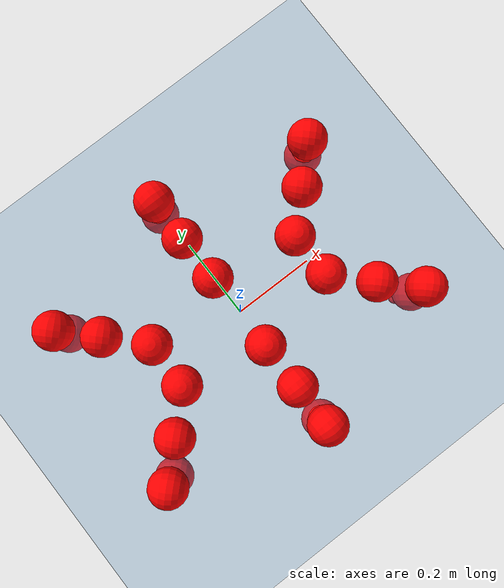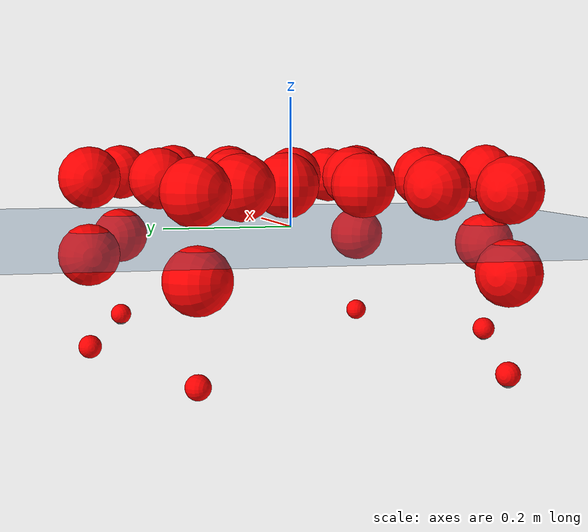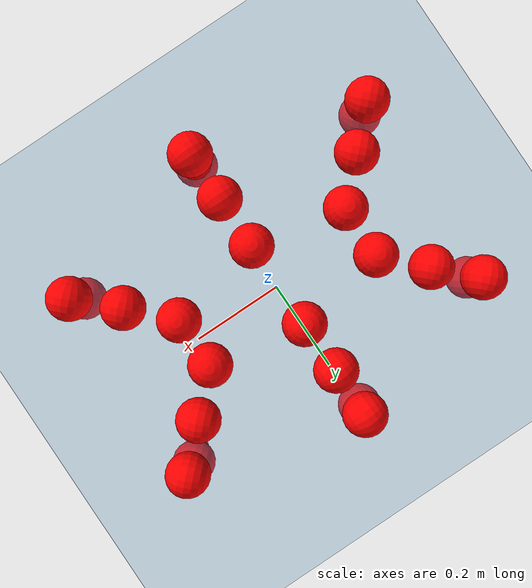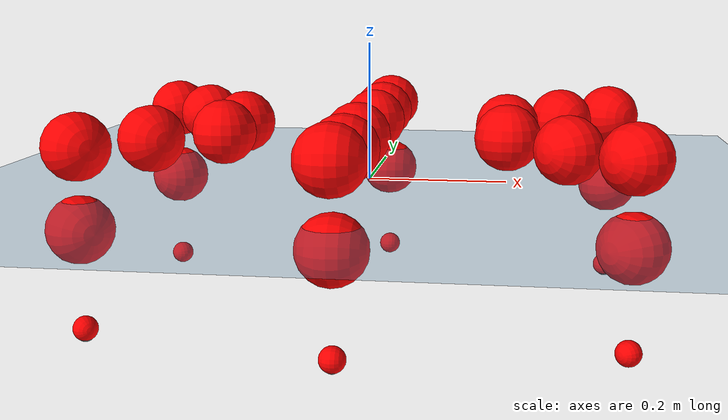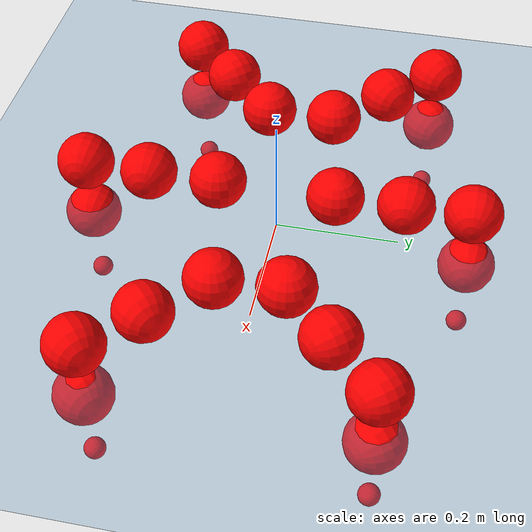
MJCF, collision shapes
<mujoco model="Golem">
  <compiler angle="radian" assetdir="assets" balanceinertia="true" inertiafromgeom="false"/>

  <option timestep="0.005" density="1.2" viscosity="2e-05"/>

  <size nkey="1"/>

  <visual>
    <quality shadowsize="8192"/>
    <map shadowclip="0.5"/>
  </visual>

  <default>
    <default class="/">
      <joint armature="0.01" damping="0.01" frictionloss="0.01"/>
      <geom contype="0" conaffinity="0" group="1" solref="-1000 -80"/>
      <site size="0.01 0.005 0.005" group="5"/>
      <general forcelimited="true" biastype="affine" gainprm="25" biasprm="0 -25 -0.5"/>
      <default class="visual">
        <geom type="mesh" group="2"/>
      </default>
      <default class="collision">
        <geom group="3"/>
      </default>
      <default class="foot">
        <geom size="0.01 0 0" condim="6" group="4" priority="1" solimp="0.015 1 0.01"/>
      </default>
      <default class="reward_collision_sphere">
        <geom group="5" rgba="1 0 0 1"/>
      </default>
    </default>
  </default>

  <asset>
    <texture type="skybox" colorspace="auto" name="//unnamed_texture_0" builtin="gradient" rgb1="0.95 0.95 0.95" rgb2="0.95 0.95 0.95" width="100" height="600"/>
    <texture type="2d" colorspace="auto" name="texplane" builtin="checker" rgb1="0.345 0.575 0.748" rgb2="0.345 0.575 0.748" markrgb="1 1 1" width="512" height="512"/>
    <material name="MatPlane" class="/" texture="texplane" texuniform="true" texrepeat="2 2" specular="0.9"/>
    <mesh name="body" class="/" file="body.stl" scale="0.001 0.001 0.001"/>
    <mesh name="coxa" class="/" file="coxa.stl" scale="0.001 0.001 0.001"/>
    <mesh name="femur" class="/" file="femur.stl" scale="0.001 0.001 0.001"/>
    <mesh name="tibia" class="/" file="tibia.stl" scale="0.001 0.001 0.001"/>
    <mesh name="tarsus" class="/" file="tarsus.stl" scale="0.001 0.001 0.001"/>
  </asset>

  <worldbody>
    <geom name="floor" class="/" size="100 100 0.125" type="plane" group="0" material="MatPlane"/>
    <light name="toplight_shadow" class="/" pos="0 0 5" dir="0.0990148 0.0990148 -0.990148" type="directional" ambient="0.04 0.04 0.04" diffuse="0.55 0.55 0.55" specular="0.12 0.12 0.12"/>
    <light name="toplight_fill" class="/" pos="0 0 5" dir="0.0990148 0.0990148 -0.990148" type="directional" castshadow="false" ambient="0.04 0.04 0.04" diffuse="0.3 0.3 0.3" specular="0.08 0.08 0.08"/>
    <body name="trunk" pos="-0.0027744 0.000203687 -0.00274922" quat="1 4.25328e-06 -3.12445e-06 4.09759e-06">
      <inertial pos="0.000525261 -0.0018259 -0.0024369" quat="0.999975 -0.00366976 0.00483382 -0.00374404" mass="5.72487" diaginertia="0.0339719 0.0107487 0.0232865"/>
      <joint name="//unnamed_joint_0" type="free"/>
      <geom name="//unnamed_geom_1" class="/" pos="0 0 0.0761076" quat="1 0 0 0" type="mesh" rgba="0.9 0.9 0.9 1" mesh="body"/>
      <site name="imu" class="/" pos="0.180547 -0.00936736 0.105621" size="0.011645"/>
      <camera name="track" class="/" pos="0 -2.03171 0" quat="0.707107 0.707107 0 0" mode="trackcom"/>
      <camera name="ego_camera" class="/" pos="0.167502 0 0.118918" quat="-0.5 -0.5 0.5 0.5"/>
      <body name="coxa_RR" pos="-0.229925 -0.0818697 0.0761516" quat="0.383016 -1.26105e-05 -0.000222329 -0.923742">
        <inertial pos="-0.00171423 0.000506378 -0.00225526" quat="0.9999 -0.0105685 -0.000917012 0.00934157" mass="0.305721" diaginertia="0.0352374 0.0105822 0.0229376"/>
        <joint name="coxa_joint_RR" class="/" pos="0 0 0" axis="0.00521751 -0.00766633 -0.999957" range="-3.18852 3.16842" armature="0.0101037" damping="0" frictionloss="0.0100026"/>
        <geom name="//unnamed_geom_2" class="/" type="mesh" rgba="0.2 0.2 0.2 1" mesh="coxa"/>
        <geom name="//unnamed_geom_3" class="reward_collision_sphere" size="0.0465801" pos="-0.0386542 0 0"/>
        <body name="femur_RR" pos="0.0767584 -0.000233604 0.000134069" quat="0.499998 -0.5 0.5 0.500001">
          <inertial pos="-0.00242707 0.00150129 0.000640254" quat="0.999997 0.000369091 0.00123088 -0.00185434" mass="0.315636" diaginertia="0.036301 0.0109623 0.0239935"/>
          <joint name="femur_joint_RR" class="/" pos="0 0 0" axis="-0.00316403 0.00860587 -0.999958" range="-3.1357 3.14465" armature="0.012646" damping="0.0227268" frictionloss="0.0119826"/>
          <geom name="//unnamed_geom_4" class="/" type="mesh" rgba="0.9 0.9 0.9 1" mesh="femur"/>
          <geom name="//unnamed_geom_5" class="reward_collision_sphere" size="0.0465801"/>
          <body name="tibia_RR" pos="0.00138537 -0.109326 -0.000261131" quat="-0.000369848 1 0.000288792 0.000181108">
            <inertial pos="0.00269942 -0.000316466 -2.76962e-05" quat="0.999991 -0.00190636 -0.00237995 0.00291492" mass="0.327903" diaginertia="0.0352753 0.0108267 0.0239103"/>
            <joint name="tibia_joint_RR" class="/" pos="0 0 0" axis="-0.00413651 -0.000900386 0.999991" range="-3.13915 3.14377" armature="0.0110802" damping="0.0167744" frictionloss="0.00999506"/>
            <geom name="//unnamed_geom_6" class="/" type="mesh" rgba="0.2 0.2 0.2 1" mesh="tibia"/>
            <geom name="//unnamed_geom_7" class="reward_collision_sphere" size="0.0465801"/>
            <body name="tarsus_RR" pos="0.112787 -0.000485046 -0.000510013" quat="1 0.000259237 4.36862e-05 -0.00028772">
              <inertial pos="0.0747112 -0.000651958 0.000582067" quat="0.510607 0.496307 0.491644 0.501245" mass="0.321972" diaginertia="0.0357792 0.0105195 0.0234979"/>
              <joint name="tarsus_joint_RR" class="/" pos="0 0 0" axis="0.0111821 0.00484734 0.999926" stiffness="0.000509534" range="-3.15469 3.14741" armature="0.0110302" damping="0.017553" frictionloss="0.0112494"/>
              <geom name="//unnamed_geom_8" class="/" type="mesh" rgba="0.9 0.9 0.9 1" mesh="tarsus"/>
              <geom name="foot_1" class="foot" size="0.0128219" pos="0.144309 0 0" quat="0 -0.707107 0 0.707107"/>
              <geom name="//unnamed_geom_10" class="reward_collision_sphere" size="0.0465801"/>
              <geom name="//unnamed_geom_11" class="reward_collision_sphere" size="0.0174676" pos="0.138511 0 0"/>
              <site name="foot_1" class="foot" pos="0.144309 0 0" quat="0 -0.707107 0 0.707107" size="0.011645"/>
            </body>
          </body>
        </body>
      </body>
      <body name="coxa_RM" pos="-0.00171672 -0.135851 0.0806232" quat="0.706912 -0.0012954 -0.000280565 -0.7073">
        <inertial pos="-0.0010703 -0.00284514 -0.00127474" quat="0.999988 -0.00429772 0.0025291 4.13291e-05" mass="0.323976" diaginertia="0.0371103 0.010806 0.0246563"/>
        <joint name="coxa_joint_RM" class="/" pos="0 0 0" axis="0.00922865 -0.00471799 -0.999946" range="-3.14896 3.13814" armature="0.0118982" damping="0.0104553" frictionloss="0.0119711"/>
        <geom name="//unnamed_geom_12" class="/" type="mesh" rgba="0.2 0.2 0.2 1" mesh="coxa"/>
        <geom name="//unnamed_geom_13" class="reward_collision_sphere" size="0.0465801" pos="-0.0386542 0 0"/>
        <body name="femur_RM" pos="0.0766779 0.000124501 -0.00143099" quat="0.500483 -0.499667 0.499526 0.500323">
          <inertial pos="-0.00133211 -0.0029407 -0.000582152" quat="0.999993 0.00114525 -0.00202459 -0.00288729" mass="0.324993" diaginertia="0.0358459 0.0108658 0.0246129"/>
          <joint name="femur_joint_RM" class="/" pos="0 0 0" axis="-0.0131615 -0.00592834 -0.999896" stiffness="0.00798665" range="-3.11854 3.1699" armature="0.0129696" damping="0.0200382" frictionloss="0.0105752"/>
          <geom name="//unnamed_geom_14" class="/" type="mesh" rgba="0.9 0.9 0.9 1" mesh="femur"/>
          <geom name="//unnamed_geom_15" class="reward_collision_sphere" size="0.0465801"/>
          <body name="tibia_RM" pos="-0.00285565 -0.106449 0.000468748" quat="0.000262202 0.999999 0.000619067 -0.00115379">
            <inertial pos="-0.000378009 0.00113403 0.000806256" quat="1 4.70744e-05 0.000245013 -0.000277276" mass="0.320552" diaginertia="0.0377657 0.011514 0.024276"/>
            <joint name="tibia_joint_RM" class="/" pos="0 0 0" axis="-0.00704708 -0.00087146 0.999975" range="-3.0962 3.09788" armature="0.0117816" damping="0" frictionloss="0.0131331"/>
            <geom name="//unnamed_geom_16" class="/" type="mesh" rgba="0.2 0.2 0.2 1" mesh="tibia"/>
            <geom name="//unnamed_geom_17" class="reward_collision_sphere" size="0.0465801"/>
            <body name="tarsus_RM" pos="0.110009 -0.000952585 -0.00132729" quat="1 -0.000113261 -4.64304e-05 -7.70655e-05">
              <inertial pos="0.0763129 5.75917e-05 0.00300468" quat="0.504039 0.494822 0.508335 0.492637" mass="0.3222" diaginertia="0.0376448 0.0111048 0.0240902"/>
              <joint name="tarsus_joint_RM" class="/" pos="0 0 0" axis="-0.00256763 0.00880287 0.999958" range="-3.17925 3.11556" armature="0.0115628" damping="0.0145531" frictionloss="0.0110302"/>
              <geom name="//unnamed_geom_18" class="/" type="mesh" rgba="0.9 0.9 0.9 1" mesh="tarsus"/>
              <geom name="foot_2" class="foot" size="0.0124257" pos="0.144309 0 0" quat="0 -0.707107 0 0.707107"/>
              <geom name="//unnamed_geom_20" class="reward_collision_sphere" size="0.0465801"/>
              <geom name="//unnamed_geom_21" class="reward_collision_sphere" size="0.0174676" pos="0.138511 0 0"/>
              <site name="foot_2" class="foot" pos="0.144309 0 0" quat="0 -0.707107 0 0.707107" size="0.011645"/>
            </body>
          </body>
        </body>
      </body>
      <body name="coxa_RF" pos="0.231587 -0.0815758 0.075334" quat="0.923591 0.000949404 0.000409048 -0.383379">
        <inertial pos="0.00233931 -0.000105837 0.000616245" quat="0.999972 0.0066861 0.00306047 -0.00130795" mass="0.32175" diaginertia="0.0359263 0.0112498 0.0247737"/>
        <joint name="coxa_joint_RF" class="/" pos="0 0 0" axis="-0.00902448 -0.010588 -0.999903" range="-3.13857 3.19273" armature="0.0120877" damping="0" frictionloss="0.0115255"/>
        <geom name="//unnamed_geom_22" class="/" type="mesh" rgba="0.2 0.2 0.2 1" mesh="coxa"/>
        <geom name="//unnamed_geom_23" class="reward_collision_sphere" size="0.0465801" pos="-0.0386542 0 0"/>
        <body name="femur_RF" pos="0.0776226 -0.00207545 -0.00304963" quat="0.499516 -0.500185 0.500197 0.500102">
          <inertial pos="-0.000234252 -7.10587e-05 0.00247432" quat="0.999978 0.0031808 -0.001293 0.00563396" mass="0.316141" diaginertia="0.0355597 0.011102 0.0249011"/>
          <joint name="femur_joint_RF" class="/" pos="0 0 0" axis="0.00217919 -7.52086e-05 -0.999998" range="-3.10977 3.15212" armature="0.0118036" damping="0.00774272" frictionloss="0.0101092"/>
          <geom name="//unnamed_geom_24" class="/" type="mesh" rgba="0.9 0.9 0.9 1" mesh="femur"/>
          <geom name="//unnamed_geom_25" class="reward_collision_sphere" size="0.0465801"/>
          <body name="tibia_RF" pos="-0.00295273 -0.110519 0.0028399" quat="-3.65409e-07 1 -8.75266e-06 -4.7541e-06">
            <inertial pos="0.00282859 -0.00258675 -0.000133611" quat="0.999988 0.00434675 0.00225334 -0.000579104" mass="0.309584" diaginertia="0.03508 0.0104596 0.0237442"/>
            <joint name="tibia_joint_RF" class="/" pos="0 0 0" axis="-0.0117039 0.00195208 0.99993" range="-3.14294 3.13565" armature="0.0118933" damping="0.0188515" frictionloss="0.0122241"/>
            <geom name="//unnamed_geom_26" class="/" type="mesh" rgba="0.2 0.2 0.2 1" mesh="tibia"/>
            <geom name="//unnamed_geom_27" class="reward_collision_sphere" size="0.0465801"/>
            <body name="tarsus_RF" pos="0.11353 0.000505043 -7.99608e-05" quat="0.999999 0.000492066 0.00132116 0.000150594">
              <inertial pos="0.0803921 -0.00178437 0.00201665" quat="0.493198 0.499019 0.504022 0.503684" mass="0.312606" diaginertia="0.0358759 0.0105405 0.0246874"/>
              <joint name="tarsus_joint_RF" class="/" pos="0 0 0" axis="-0.0108883 -0.00645918 0.99992" range="-3.1912 3.13768" armature="0.0116827" damping="0.0135779" frictionloss="0.0107591"/>
              <geom name="//unnamed_geom_28" class="/" type="mesh" rgba="0.9 0.9 0.9 1" mesh="tarsus"/>
              <geom name="foot_3" class="foot" size="0.0116812" pos="0.144309 0 0" quat="0 -0.707107 0 0.707107"/>
              <geom name="//unnamed_geom_30" class="reward_collision_sphere" size="0.0465801"/>
              <geom name="//unnamed_geom_31" class="reward_collision_sphere" size="0.0174676" pos="0.138511 0 0"/>
              <site name="foot_3" class="foot" pos="0.144309 0 0" quat="0 -0.707107 0 0.707107" size="0.011645"/>
            </body>
          </body>
        </body>
      </body>
      <body name="coxa_LR" pos="-0.227931 0.0853112 0.0773239" quat="0.381518 0.00028549 -5.25061e-05 0.924361">
        <inertial pos="-3.21621e-05 -0.000893991 0.00218783" quat="0.99999 -0.00202982 -0.00259165 0.00303348" mass="0.318144" diaginertia="0.036575 0.0112217 0.0239646"/>
        <joint name="coxa_joint_LR" class="/" pos="0 0 0" axis="-0.00152598 0.00346531 -0.999993" range="-3.19189 3.17375" armature="0.0102667" damping="0.0118555" frictionloss="0.0108792"/>
        <geom name="//unnamed_geom_32" class="/" type="mesh" rgba="0.2 0.2 0.2 1" mesh="coxa"/>
        <geom name="//unnamed_geom_33" class="reward_collision_sphere" size="0.0465801" pos="-0.0386542 0 0"/>
        <body name="femur_LR" pos="0.0752985 -0.0031763 0.00139242" quat="0.499986 -0.500264 0.500321 0.499428">
          <inertial pos="0.00191219 -0.00264095 0.00260342" quat="0.999949 0.00233877 -0.00933778 0.00310758" mass="0.315572" diaginertia="0.036083 0.0109084 0.0240653"/>
          <joint name="femur_joint_LR" class="/" pos="0 0 0" axis="-0.0037164 -0.00843871 0.999957" stiffness="0.00353663" range="-3.15423 3.10776" armature="0.0107741" damping="0" frictionloss="0.0114344"/>
          <geom name="//unnamed_geom_34" class="/" type="mesh" rgba="0.9 0.9 0.9 1" mesh="femur"/>
          <geom name="//unnamed_geom_35" class="reward_collision_sphere" size="0.0465801"/>
          <body name="tibia_LR" pos="0.00161091 -0.108153 -0.000119682" quat="0.000165472 0.999999 -0.000143404 0.00133332">
            <inertial pos="0.0027792 -0.002172 0.00187933" quat="0.999997 -0.00140628 -0.000715655 -0.00204639" mass="0.328469" diaginertia="0.0362187 0.0112134 0.0231454"/>
            <joint name="tibia_joint_LR" class="/" pos="0 0 0" axis="0.00330326 0.00853801 -0.999958" range="-3.14925 3.09557" armature="0.010442" damping="0.013627" frictionloss="0.0117202"/>
            <geom name="//unnamed_geom_36" class="/" type="mesh" rgba="0.2 0.2 0.2 1" mesh="tibia"/>
            <geom name="//unnamed_geom_37" class="reward_collision_sphere" size="0.0465801"/>
            <body name="tarsus_LR" pos="0.114874 -0.000709298 -0.00239033" quat="1 -0.000418431 -3.82558e-05 0.000627294">
              <inertial pos="0.075654 -0.0021766 -0.0017481" quat="0.500769 0.499069 0.50041 0.499751" mass="0.315002" diaginertia="0.0357711 0.0106951 0.0248763"/>
              <joint name="tarsus_joint_LR" class="/" pos="0 0 0" axis="0.003415 -0.00098587 -0.999994" range="-3.12585 3.1189" armature="0.0130645" damping="0.0275383" frictionloss="0.0127253"/>
              <geom name="//unnamed_geom_38" class="/" type="mesh" rgba="0.9 0.9 0.9 1" mesh="tarsus"/>
              <geom name="foot_4" class="foot" size="0.0113938" pos="0.144309 0 0" quat="0.707107 0 -0.707107 0"/>
              <geom name="//unnamed_geom_40" class="reward_collision_sphere" size="0.0465801"/>
              <geom name="//unnamed_geom_41" class="reward_collision_sphere" size="0.0174676" pos="0.138511 0 0"/>
              <site name="foot_4" class="foot" pos="0.144309 0 0" quat="0.707107 0 -0.707107 0" size="0.011645"/>
            </body>
          </body>
        </body>
      </body>
      <body name="coxa_LM" pos="-0.00264774 0.132521 0.0789367" quat="0.707109 -1.83751e-05 -4.4408e-05 0.707105">
        <inertial pos="0.00210074 0.000327646 0.00248859" quat="0.999949 -0.00380929 0.00428577 -0.00831645" mass="0.308277" diaginertia="0.0347724 0.010565 0.0228608"/>
        <joint name="coxa_joint_LM" class="/" pos="0 0 0" axis="0.00790214 -0.00219184 -0.999966" stiffness="0.0089911" range="-3.15307 3.13319" armature="0.0114263" damping="0" frictionloss="0.00999296"/>
        <geom name="//unnamed_geom_42" class="/" type="mesh" rgba="0.2 0.2 0.2 1" mesh="coxa"/>
        <geom name="//unnamed_geom_43" class="reward_collision_sphere" size="0.0465801" pos="-0.0386542 0 0"/>
        <body name="femur_LM" pos="0.0740366 0.000506454 0.00155414" quat="0.499983 -0.500181 0.49991 0.499927">
          <inertial pos="0.00277752 0.000370643 -0.00281804" quat="0.999962 0.00866966 -0.000603883 -5.40723e-05" mass="0.318519" diaginertia="0.036604 0.0113279 0.0252386"/>
          <joint name="femur_joint_LM" class="/" pos="0 0 0" axis="0.00303849 0.00529228 0.999981" range="-3.11158 3.08582" armature="0.0110403" damping="0.0170978" frictionloss="0.0117016"/>
          <geom name="//unnamed_geom_44" class="/" type="mesh" rgba="0.9 0.9 0.9 1" mesh="femur"/>
          <geom name="//unnamed_geom_45" class="reward_collision_sphere" size="0.0465801"/>
          <body name="tibia_LM" pos="-0.00220611 -0.105105 -0.000782946" quat="-0.000214059 1 0.000307816 -0.000672557">
            <inertial pos="-0.00142639 0.000370942 -0.000298692" quat="0.999962 -0.0054147 -0.00231622 0.00649204" mass="0.31307" diaginertia="0.0348504 0.0105541 0.0243024"/>
            <joint name="tibia_joint_LM" class="/" pos="0 0 0" axis="0.000516322 -3.3859e-05 -1" stiffness="0.0112358" range="-3.11166 3.08715" armature="0.0100459" damping="0.0146632" frictionloss="0.0115405"/>
            <geom name="//unnamed_geom_46" class="/" type="mesh" rgba="0.2 0.2 0.2 1" mesh="tibia"/>
            <geom name="//unnamed_geom_47" class="reward_collision_sphere" size="0.0465801"/>
            <body name="tarsus_LM" pos="0.115455 0.00159495 -0.0025096" quat="0.999999 0.000690997 -0.000671838 -0.000421904">
              <inertial pos="0.0752316 -8.56846e-05 -0.0027931" quat="0.496241 0.497367 0.50934 0.496935" mass="0.321041" diaginertia="0.0347546 0.010819 0.023283"/>
              <joint name="tarsus_joint_LM" class="/" pos="0 0 0" axis="0.000556724 -0.0012186 -0.999999" range="-3.08817 3.13974" armature="0.0126505" damping="0.0159022" frictionloss="0.0111223"/>
              <geom name="//unnamed_geom_48" class="/" type="mesh" rgba="0.9 0.9 0.9 1" mesh="tarsus"/>
              <geom name="foot_5" class="foot" size="0.0117433" pos="0.144309 0 0" quat="0.707107 0 -0.707107 0"/>
              <geom name="//unnamed_geom_50" class="reward_collision_sphere" size="0.0465801"/>
              <geom name="//unnamed_geom_51" class="reward_collision_sphere" size="0.0174676" pos="0.138511 0 0"/>
              <site name="foot_5" class="foot" pos="0.144309 0 0" quat="0.707107 0 -0.707107 0" size="0.011645"/>
            </body>
          </body>
        </body>
      </body>
      <body name="coxa_LF" pos="0.229297 0.0835057 0.0785001" quat="0.923552 -0.000548371 -8.07541e-05 0.383474">
        <inertial pos="1.2016e-05 -0.000653455 -0.000711671" quat="0.999957 -0.00733706 -0.00293058 -0.00493495" mass="0.323251" diaginertia="0.0360985 0.010795 0.0238362"/>
        <joint name="coxa_joint_LF" class="/" pos="0 0 0" axis="-9.39193e-05 0.0104301 -0.999946" range="-3.08633 3.13285" armature="0.013216" damping="0.0165698" frictionloss="0.0103229"/>
        <geom name="//unnamed_geom_52" class="/" type="mesh" rgba="0.2 0.2 0.2 1" mesh="coxa"/>
        <geom name="//unnamed_geom_53" class="reward_collision_sphere" size="0.0465801" pos="-0.0386542 0 0"/>
        <body name="femur_LF" pos="0.0747104 -0.00190291 0.000178613" quat="0.499925 -0.500103 0.499915 0.500057">
          <inertial pos="0.000212308 0.0027713 -0.00190325" quat="0.999989 -0.00408898 0.00200735 0.000953561" mass="0.32776" diaginertia="0.0376801 0.0111336 0.0238334"/>
          <joint name="femur_joint_LF" class="/" pos="0 0 0" axis="-0.00316992 -0.00809901 0.999962" stiffness="0.00697231" range="-3.15171 3.14407" armature="0.0132329" damping="0" frictionloss="0.0117876"/>
          <geom name="//unnamed_geom_54" class="/" type="mesh" rgba="0.9 0.9 0.9 1" mesh="femur"/>
          <geom name="//unnamed_geom_55" class="reward_collision_sphere" size="0.0465801"/>
          <body name="tibia_LF" pos="0.00148942 -0.112436 0.000394058" quat="-0.000274721 1 -0.000214942 -0.000219248">
            <inertial pos="0.00135167 0.00142148 0.000440215" quat="0.999956 0.00247304 0.0022387 0.00872929" mass="0.313171" diaginertia="0.034727 0.0110965 0.0237324"/>
            <joint name="tibia_joint_LF" class="/" pos="0 0 0" axis="-0.00673373 -0.00914999 -0.999935" stiffness="0.00944894" range="-3.0844 3.11033" armature="0.0113785" damping="0" frictionloss="0.0100024"/>
            <geom name="//unnamed_geom_56" class="/" type="mesh" rgba="0.2 0.2 0.2 1" mesh="tibia"/>
            <geom name="//unnamed_geom_57" class="reward_collision_sphere" size="0.0465801"/>
            <body name="tarsus_LF" pos="0.110457 0.00235838 0.000921859" quat="1 -0.000117744 -3.82938e-05 -2.50523e-05">
              <inertial pos="0.0747141 -0.000714824 0.00139038" quat="0.490816 0.505834 0.499689 0.50353" mass="0.310705" diaginertia="0.0359754 0.010783 0.023705"/>
              <joint name="tarsus_joint_LF" class="/" pos="0 0 0" axis="-9.35347e-05 0.000329214 -1" stiffness="0.00609235" range="-3.18353 3.11424" armature="0.0134209" damping="0.0159211" frictionloss="0.013286"/>
              <geom name="//unnamed_geom_58" class="/" type="mesh" rgba="0.9 0.9 0.9 1" mesh="tarsus"/>
              <geom name="foot_6" class="foot" size="0.012739" pos="0.144309 0 0" quat="0.707107 0 -0.707107 0"/>
              <geom name="//unnamed_geom_60" class="reward_collision_sphere" size="0.0465801"/>
              <geom name="//unnamed_geom_61" class="reward_collision_sphere" size="0.0174676" pos="0.138511 0 0"/>
              <site name="foot_6" class="foot" pos="0.144309 0 0" quat="0.707107 0 -0.707107 0" size="0.011645"/>
            </body>
          </body>
        </body>
      </body>
    </body>
  </worldbody>

  <contact>
    <pair class="/" geom1="floor" geom2="foot_1" name="//unnamed_contact_0"/>
    <pair class="/" geom1="floor" geom2="foot_2" name="//unnamed_contact_1"/>
    <pair class="/" geom1="floor" geom2="foot_3" name="//unnamed_contact_2"/>
    <pair class="/" geom1="floor" geom2="foot_4" name="//unnamed_contact_3"/>
    <pair class="/" geom1="floor" geom2="foot_5" name="//unnamed_contact_4"/>
    <pair class="/" geom1="floor" geom2="foot_6" name="//unnamed_contact_5"/>
  </contact>

  <actuator>
    <general name="coxa_joint_RR" class="/" joint="coxa_joint_RR" forcerange="-8.26352 8.26352" gainprm="28.9166" biasprm="0 -28.9166 -0.61939"/>
    <general name="femur_joint_RR" class="/" joint="femur_joint_RR" forcerange="-8.47407 8.47407" gainprm="28.9166" biasprm="0 -28.9166 -0.61939"/>
    <general name="tibia_joint_RR" class="/" joint="tibia_joint_RR" forcerange="-8.45911 8.45911" gainprm="28.9166" biasprm="0 -28.9166 -0.61939"/>
    <general name="tarsus_joint_RR" class="/" joint="tarsus_joint_RR" forcerange="-8.19563 8.19563" gainprm="28.9166" biasprm="0 -28.9166 -0.61939"/>
    <general name="coxa_joint_RM" class="/" joint="coxa_joint_RM" forcerange="-8.82009 8.82009" gainprm="28.9166" biasprm="0 -28.9166 -0.61939"/>
    <general name="femur_joint_RM" class="/" joint="femur_joint_RM" forcerange="-8.46621 8.46621" gainprm="28.9166" biasprm="0 -28.9166 -0.61939"/>
    <general name="tibia_joint_RM" class="/" joint="tibia_joint_RM" forcerange="-8.50513 8.50513" gainprm="28.9166" biasprm="0 -28.9166 -0.61939"/>
    <general name="tarsus_joint_RM" class="/" joint="tarsus_joint_RM" forcerange="-7.67837 7.67837" gainprm="28.9166" biasprm="0 -28.9166 -0.61939"/>
    <general name="coxa_joint_RF" class="/" joint="coxa_joint_RF" forcerange="-8.82279 8.82279" gainprm="28.9166" biasprm="0 -28.9166 -0.61939"/>
    <general name="femur_joint_RF" class="/" joint="femur_joint_RF" forcerange="-8.45248 8.45248" gainprm="28.9166" biasprm="0 -28.9166 -0.61939"/>
    <general name="tibia_joint_RF" class="/" joint="tibia_joint_RF" forcerange="-8.40564 8.40564" gainprm="28.9166" biasprm="0 -28.9166 -0.61939"/>
    <general name="tarsus_joint_RF" class="/" joint="tarsus_joint_RF" forcerange="-8.17637 8.17637" gainprm="28.9166" biasprm="0 -28.9166 -0.61939"/>
    <general name="coxa_joint_LR" class="/" joint="coxa_joint_LR" forcerange="-7.88319 7.88319" gainprm="28.9166" biasprm="0 -28.9166 -0.61939"/>
    <general name="femur_joint_LR" class="/" joint="femur_joint_LR" forcerange="-7.82428 7.82428" gainprm="28.9166" biasprm="0 -28.9166 -0.61939"/>
    <general name="tibia_joint_LR" class="/" joint="tibia_joint_LR" forcerange="-8.45273 8.45273" gainprm="28.9166" biasprm="0 -28.9166 -0.61939"/>
    <general name="tarsus_joint_LR" class="/" joint="tarsus_joint_LR" forcerange="-8.45978 8.45978" gainprm="28.9166" biasprm="0 -28.9166 -0.61939"/>
    <general name="coxa_joint_LM" class="/" joint="coxa_joint_LM" forcerange="-8.6069 8.6069" gainprm="28.9166" biasprm="0 -28.9166 -0.61939"/>
    <general name="femur_joint_LM" class="/" joint="femur_joint_LM" forcerange="-7.65483 7.65483" gainprm="28.9166" biasprm="0 -28.9166 -0.61939"/>
    <general name="tibia_joint_LM" class="/" joint="tibia_joint_LM" forcerange="-8.54621 8.54621" gainprm="28.9166" biasprm="0 -28.9166 -0.61939"/>
    <general name="tarsus_joint_LM" class="/" joint="tarsus_joint_LM" forcerange="-9.4021 9.4021" gainprm="28.9166" biasprm="0 -28.9166 -0.61939"/>
    <general name="coxa_joint_LF" class="/" joint="coxa_joint_LF" forcerange="-7.97489 7.97489" gainprm="28.9166" biasprm="0 -28.9166 -0.61939"/>
    <general name="femur_joint_LF" class="/" joint="femur_joint_LF" forcerange="-9.35245 9.35245" gainprm="28.9166" biasprm="0 -28.9166 -0.61939"/>
    <general name="tibia_joint_LF" class="/" joint="tibia_joint_LF" forcerange="-8.46486 8.46486" gainprm="28.9166" biasprm="0 -28.9166 -0.61939"/>
    <general name="tarsus_joint_LF" class="/" joint="tarsus_joint_LF" forcerange="-8.41587 8.41587" gainprm="28.9166" biasprm="0 -28.9166 -0.61939"/>
  </actuator>

  <sensor>
    <gyro site="imu" name="imu_angular_velocity"/>
    <velocimeter site="imu" name="imu_linear_velocity"/>
    <framelinvel objtype="site" objname="foot_1" name="foot_1_global_linear_velocity"/>
    <framelinvel objtype="site" objname="foot_2" name="foot_2_global_linear_velocity"/>
    <framelinvel objtype="site" objname="foot_3" name="foot_3_global_linear_velocity"/>
    <framelinvel objtype="site" objname="foot_4" name="foot_4_global_linear_velocity"/>
    <framelinvel objtype="site" objname="foot_5" name="foot_5_global_linear_velocity"/>
    <framelinvel objtype="site" objname="foot_6" name="foot_6_global_linear_velocity"/>
  </sensor>

  <keyframe>
    <key name="home" qpos="0 0 0.1457 1 0 0 0 0 0 0 0 0 0 0 0 0 0 0 0 0 0 0 0 0 0 0 0 0 0 0 0"/>
  </keyframe>
</mujoco>
